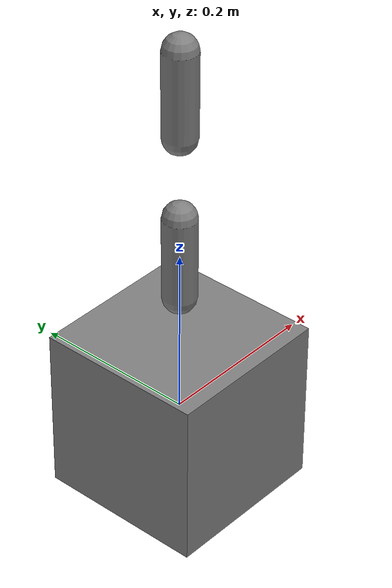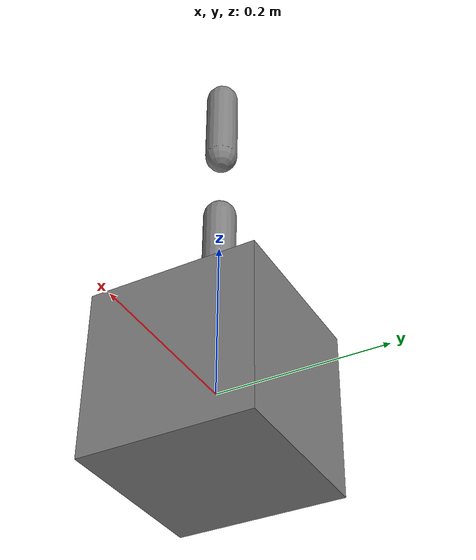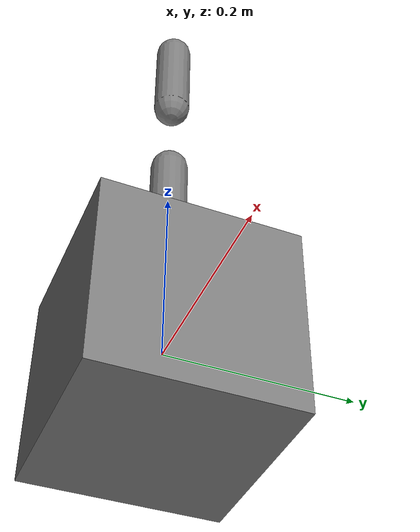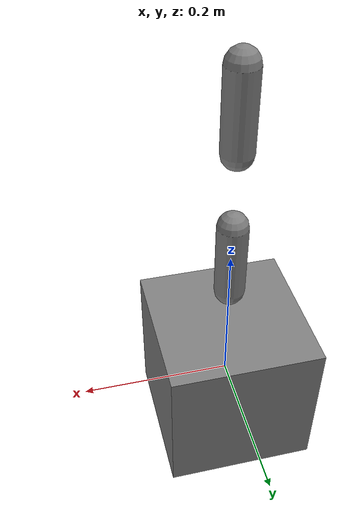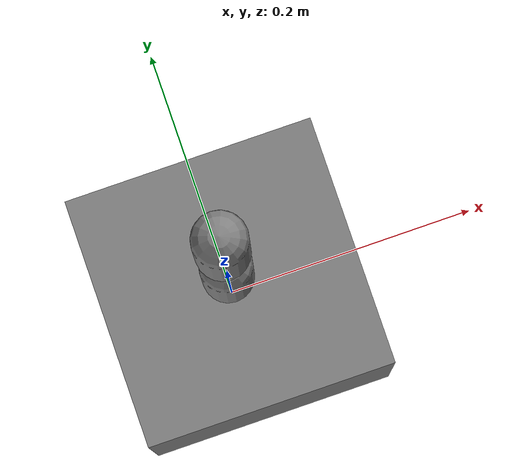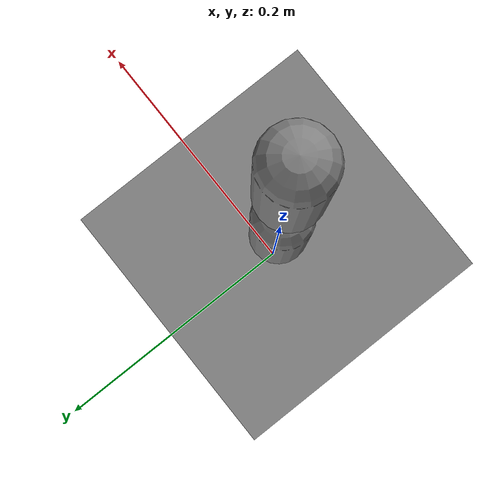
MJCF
<mujoco model="inertia_friction">
  <default>
    <default class="act">
      <joint damping="0.3" armature="0.01" frictionloss="0.075"/>
    </default>
  </default>
  <worldbody>
    <body name="base">
      <geom type="box" size="0.1 0.1 0.1"/>
      <body name="link1" pos="0 0 0.2" childclass="act">
        <joint name="j1" type="hinge" axis="0 0 1"/>
        <inertial pos="0.01 0.02 0.1" mass="1.5" fullinertia="2 3 4 0.5 0.3 0.2"/>
        <geom type="capsule" size="0.02 0.05"/>
        <body name="link2" pos="0 0 0.2">
          <joint name="j2" type="hinge" axis="0 1 0" frictionloss="0.02"/>
          <inertial pos="0 0 0.1" mass="0.5" diaginertia="0.001 0.001 0.001"/>
          <geom type="capsule" size="0.02 0.05"/>
        </body>
      </body>
    </body>
  </worldbody>
</mujoco>
